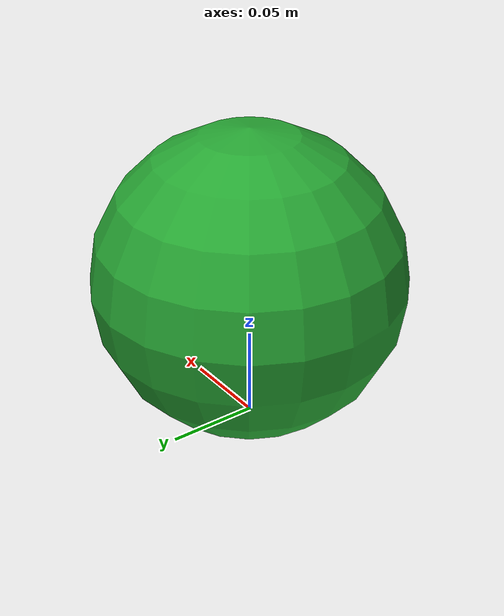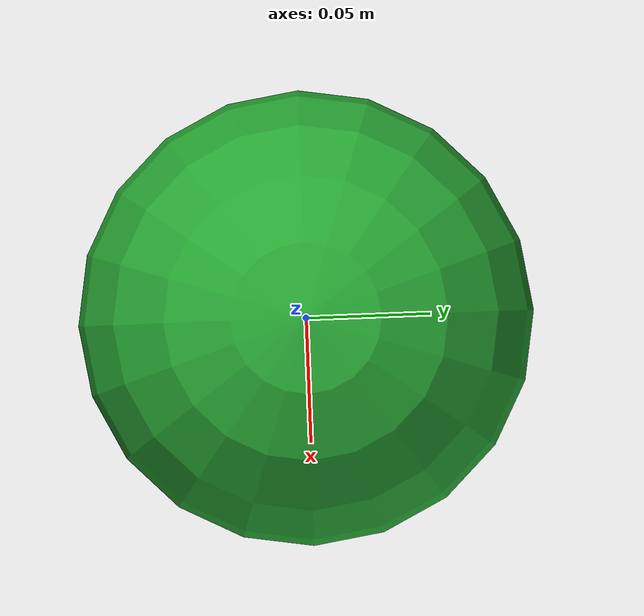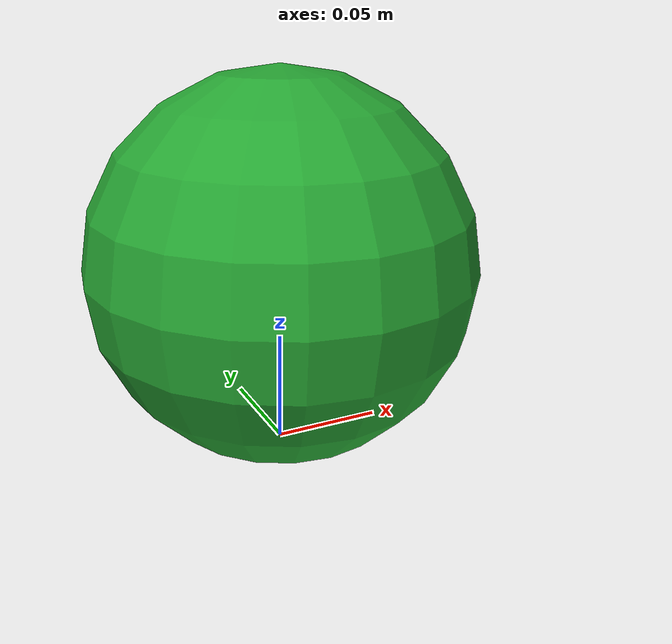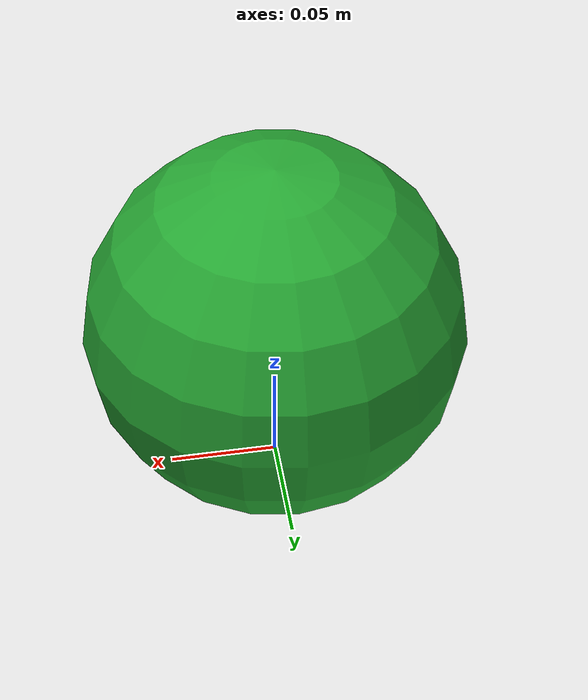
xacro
<?xml version="1.0" ?>
<robot xmlns:xacro="http://www.ros.org/wiki/xacro" name="object">

    <!-- currently supports "sphere" and "box" -->
    <xacro:arg name="object_name" default="sphere" />

    <xacro:include filename="$(find description)/urdf/environment/$(arg object_name).urdf.xacro"/>

</robot>

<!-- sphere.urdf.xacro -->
<robot xmlns:xacro="http://ros.org/wiki/xacro" name="sphere">

    <xacro:property name="link_name" value="sphere_link"/>

    <xacro:property name="sphere_radius" value="0.085"/>
    <xacro:property name="sphere_mass" value="0.2"/>
    <xacro:property name="sphere_inertia" value="0.0002"/>

    <link name="${link_name}">
        <visual>
            <origin xyz="0 0 ${sphere_radius}" rpy="0 0 0" />
            <geometry>
                <sphere radius="${sphere_radius}" />
            </geometry>
        </visual>
        <collision>
            <origin xyz="0 0 ${sphere_radius}" rpy="0 0 0" />
            <geometry>
                <sphere radius="${sphere_radius}" />
            </geometry>
        </collision>
        <inertial>
            <origin xyz="0 0 0" rpy="0 0 0"/>
            <mass value="${sphere_mass}"/>
            <inertia ixx="${sphere_inertia}" ixy="0" ixz="0" iyy="${sphere_inertia}" iyz="0" izz="${sphere_inertia}" />
        </inertial>
    </link>

    <gazebo reference="${link_name}">
        <material>Gazebo/Green</material>
    </gazebo>
</robot>
